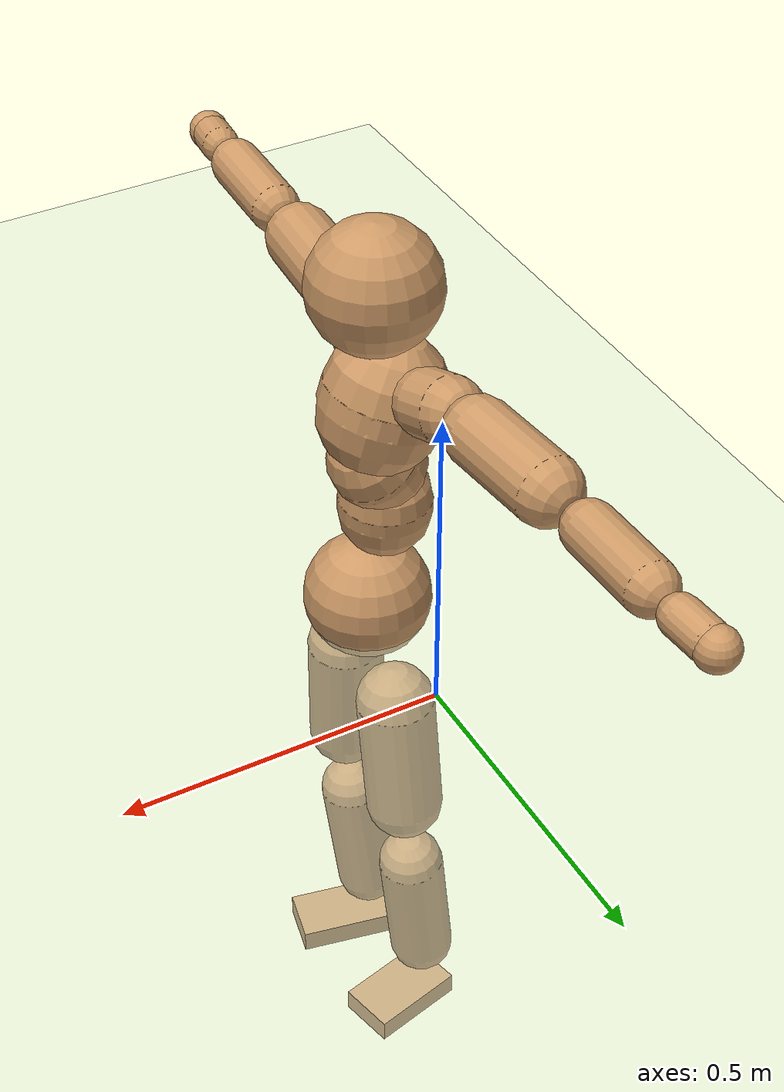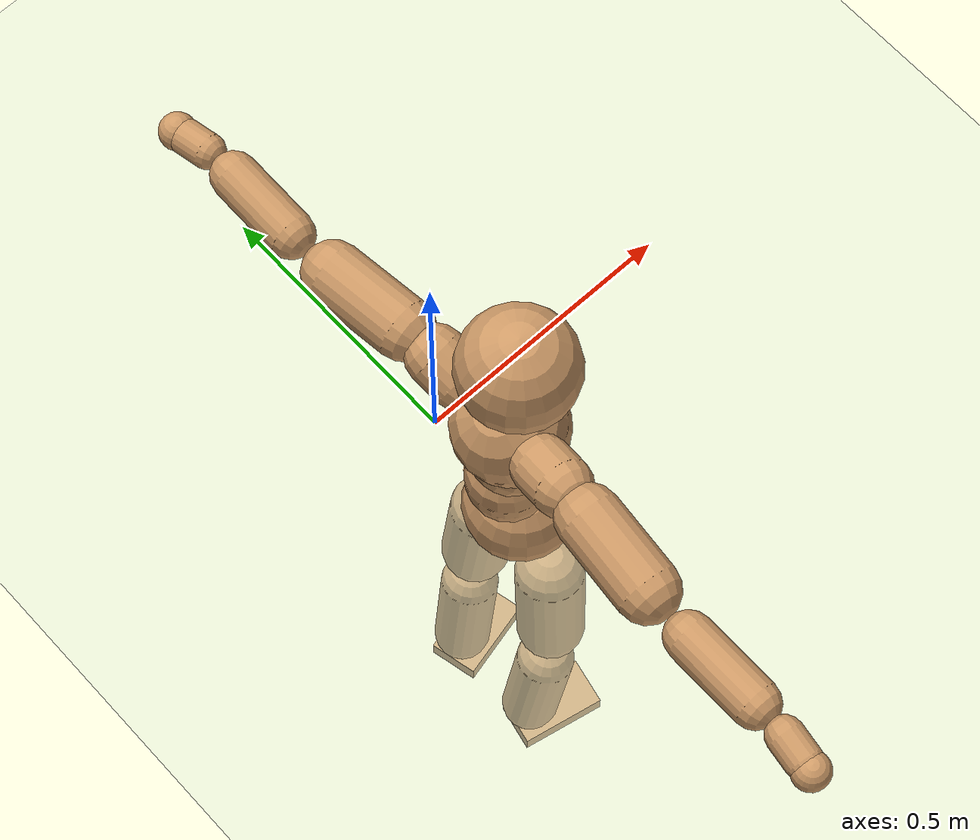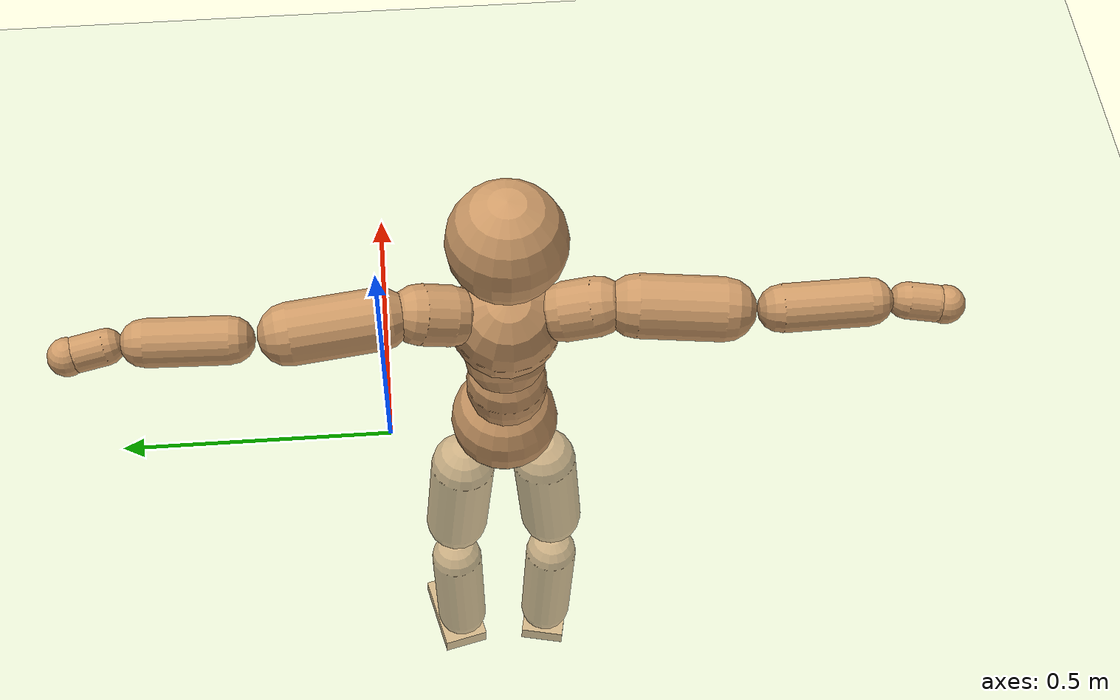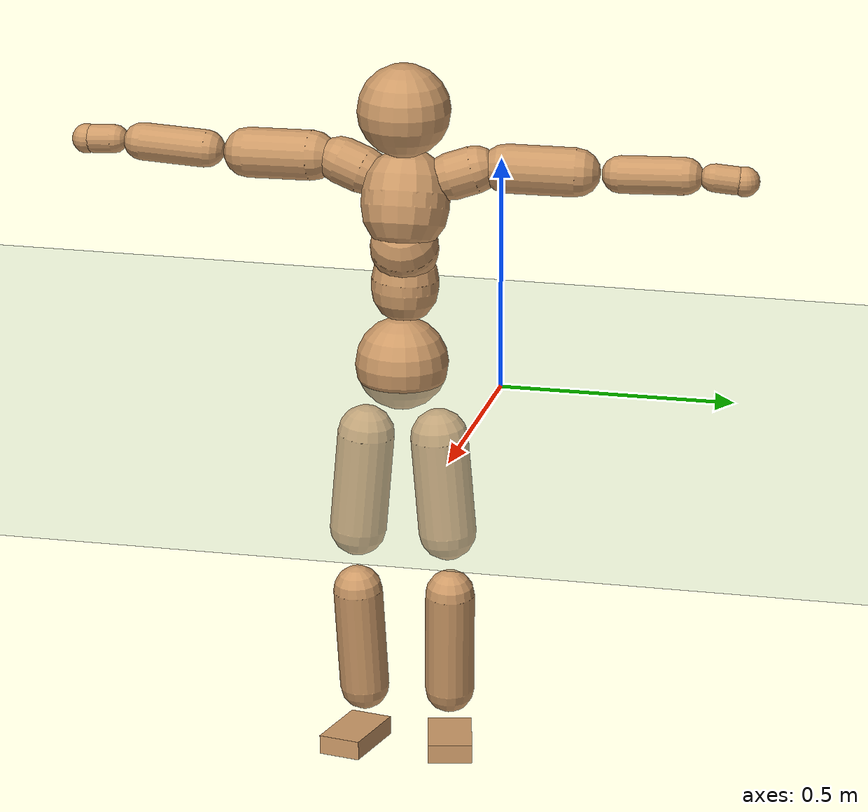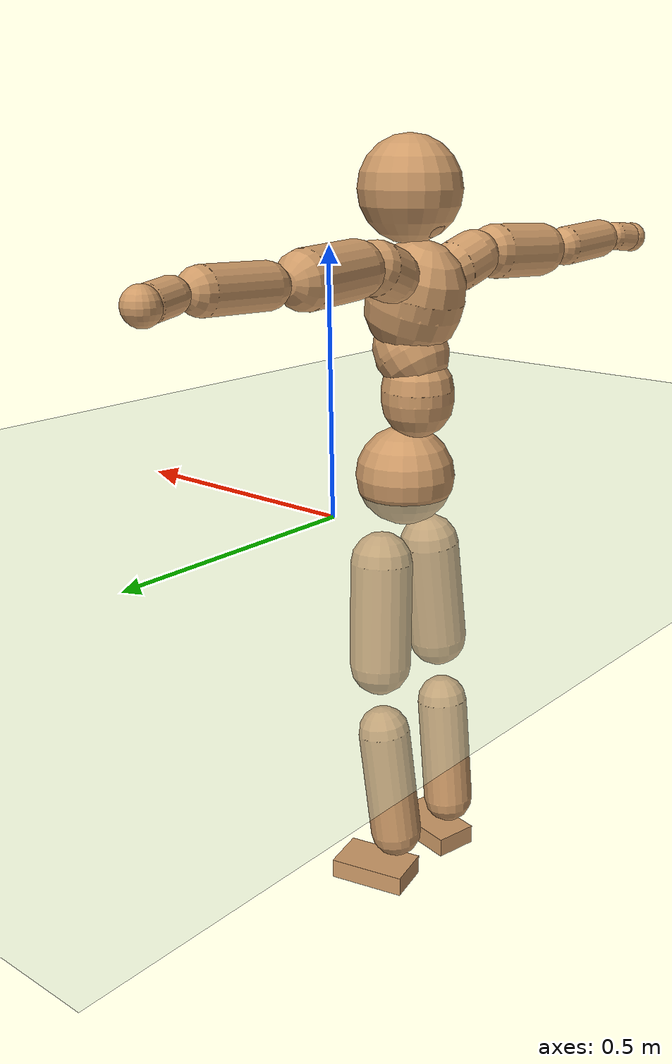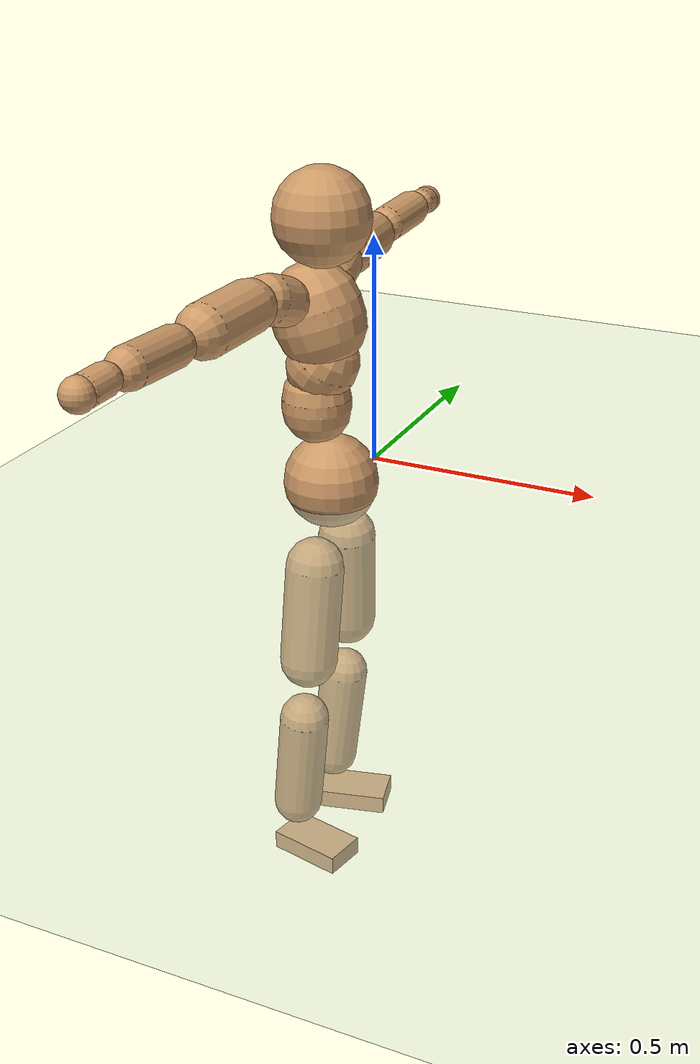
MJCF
<mujoco model="humanoid">
  <compiler coordinate="local"/>
  <default>
    <joint damping="0.0" armature="0.01" stiffness="0.0" limited="true"/>
    <geom conaffinity="1" condim="3" contype="7" margin="0.001" rgba="0.8 0.6 .4 1"/>
  </default>
  <asset>
    <texture type="skybox" builtin="gradient" rgb1=".4 .5 .6" rgb2="0 0 0" width="100" height="100"/>
    <texture builtin="flat" height="1278" mark="cross" markrgb="1 1 1" name="texgeom" random="0.01" rgb1="0.8 0.6 0.4" rgb2="0.8 0.6 0.4" type="cube" width="127"/>
    <texture builtin="checker" height="100" name="texplane" rgb1="0 0 0" rgb2="0.8 0.8 0.8" type="2d" width="100"/>
    <material name="MatPlane" reflectance="0.5" shininess="1" specular="1" texrepeat="60 60" texture="texplane"/>
    <material name="geom" texture="texgeom" texuniform="true"/>
  </asset>
  <worldbody>
    <light cutoff="100" diffuse="1 1 1" dir="-0 0 -1.3" directional="true" exponent="1" pos="0 0 1.3" specular=".1 .1 .1"/>
    <geom conaffinity="1" condim="3" name="floor" pos="0 0 0" rgba="0.8 0.9 0.8 1" size="100 100 .2" type="plane" material="MatPlane"/>
    <body name="Pelvis" pos="-0.0008 -0.2141 0.0362">
      <freejoint name="Pelvis"/>
      <geom type="sphere" contype="1" conaffinity="1" density="500" size="0.0994" pos="0.0000 0.0000 0.0000" name="Pelvis"/>
      <body name="L_Hip" pos="-0.0017 0.0747 -0.0917">
        <joint name="L_Hip_x" type="hinge" pos="0 0 0" axis="1 0 0" stiffness="800" damping="80" armature="0.02" range="-180.0000 180.0000"/>
        <joint name="L_Hip_y" type="hinge" pos="0 0 0" axis="0 1 0" stiffness="800" damping="80" armature="0.02" range="-180.0000 180.0000"/>
        <joint name="L_Hip_z" type="hinge" pos="0 0 0" axis="0 0 1" stiffness="800" damping="80" armature="0.02" range="-180.0000 180.0000"/>
        <geom type="capsule" contype="1" conaffinity="1" density="500" fromto="-0.0029 0.0054 -0.0713 -0.0118 0.0214 -0.2853" size="0.0619" name="L_Hip"/>
        <body name="L_Knee" pos="-0.0147 0.0268 -0.3566">
          <joint name="L_Knee_x" type="hinge" pos="0 0 0" axis="1 0 0" stiffness="800" damping="80" armature="0.02" range="-180.0000 180.0000"/>
          <joint name="L_Knee_y" type="hinge" pos="0 0 0" axis="0 1 0" stiffness="800" damping="80" armature="0.02" range="-180.0000 180.0000"/>
          <joint name="L_Knee_z" type="hinge" pos="0 0 0" axis="0 0 1" stiffness="800" damping="80" armature="0.02" range="-180.0000 180.0000"/>
          <geom type="capsule" contype="1" conaffinity="1" density="500" fromto="-0.0089 -0.0022 -0.0760 -0.0357 -0.0088 -0.3039" size="0.0528" name="L_Knee"/>
          <body name="L_Ankle" pos="-0.0447 -0.011 -0.3799">
            <joint name="L_Ankle_x" type="hinge" pos="0 0 0" axis="1 0 0" stiffness="800" damping="80" armature="0.02" range="-180.0000 180.0000"/>
            <joint name="L_Ankle_y" type="hinge" pos="0 0 0" axis="0 1 0" stiffness="800" damping="80" armature="0.02" range="-180.0000 180.0000"/>
            <joint name="L_Ankle_z" type="hinge" pos="0 0 0" axis="0 0 1" stiffness="800" damping="80" armature="0.02" range="-180.0000 180.0000"/>
            <geom type="box" contype="1" conaffinity="1" density="500" pos="0.0559 0.0132 -0.0275" size="0.0798 0.0473 0.0204" quat="0.9933 0.0000 0.0000 0.1154" name="L_Ankle"/>
            <body name="L_Toe" pos="0.1118 0.0263 -0.055">
              <joint name="L_Toe_x" type="hinge" pos="0 0 0" axis="1 0 0" stiffness="500" damping="50" armature="0.02" range="-180.0000 180.0000"/>
              <joint name="L_Toe_y" type="hinge" pos="0 0 0" axis="0 1 0" stiffness="500" damping="50" armature="0.02" range="-180.0000 180.0000"/>
              <joint name="L_Toe_z" type="hinge" pos="0 0 0" axis="0 0 1" stiffness="500" damping="50" armature="0.02" range="-180.0000 180.0000"/>
              <geom type="box" contype="1" conaffinity="1" density="500" pos="0.0000 0.0000 0.0270" size="0.001 0.0023 0.001" quat="0.9926 0.0000 0.0000 0.1217" name="L_Toe"/>
            </body>
          </body>
        </body>
      </body>
      <body name="R_Hip" pos="0.0016 -0.0725 -0.0924">
        <joint name="R_Hip_x" type="hinge" pos="0 0 0" axis="1 0 0" stiffness="800" damping="80" armature="0.02" range="-180.0000 180.0000"/>
        <joint name="R_Hip_y" type="hinge" pos="0 0 0" axis="0 1 0" stiffness="800" damping="80" armature="0.02" range="-180.0000 180.0000"/>
        <joint name="R_Hip_z" type="hinge" pos="0 0 0" axis="0 0 1" stiffness="800" damping="80" armature="0.02" range="-180.0000 180.0000"/>
        <geom type="capsule" contype="1" conaffinity="1" density="500" fromto="-0.0032 -0.0067 -0.0724 -0.0127 -0.0266 -0.2894" size="0.0612" name="R_Hip"/>
        <body name="R_Knee" pos="-0.0159 -0.0333 -0.3618">
          <joint name="R_Knee_x" type="hinge" pos="0 0 0" axis="1 0 0" stiffness="800" damping="80" armature="0.02" range="-180.0000 180.0000"/>
          <joint name="R_Knee_y" type="hinge" pos="0 0 0" axis="0 1 0" stiffness="800" damping="80" armature="0.02" range="-180.0000 180.0000"/>
          <joint name="R_Knee_z" type="hinge" pos="0 0 0" axis="0 0 1" stiffness="800" damping="80" armature="0.02" range="-180.0000 180.0000"/>
          <geom type="capsule" contype="1" conaffinity="1" density="500" fromto="-0.0087 0.0026 -0.0764 -0.0347 0.0105 -0.3055" size="0.053" name="R_Knee"/>
          <body name="R_Ankle" pos="-0.0433 0.0131 -0.3818">
            <joint name="R_Ankle_x" type="hinge" pos="0 0 0" axis="1 0 0" stiffness="800" damping="80" armature="0.02" range="-180.0000 180.0000"/>
            <joint name="R_Ankle_y" type="hinge" pos="0 0 0" axis="0 1 0" stiffness="800" damping="80" armature="0.02" range="-180.0000 180.0000"/>
            <joint name="R_Ankle_z" type="hinge" pos="0 0 0" axis="0 0 1" stiffness="800" damping="80" armature="0.02" range="-180.0000 180.0000"/>
            <geom type="box" contype="1" conaffinity="1" density="500" pos="0.0579 -0.0122 -0.0235" size="0.0817 0.046 0.0205" quat="0.9946 0.0000 0.0000 -0.1040" name="R_Ankle"/>
            <body name="R_Toe" pos="0.1158 -0.0245 -0.0471">
              <joint name="R_Toe_x" type="hinge" pos="0 0 0" axis="1 0 0" stiffness="500" damping="50" armature="0.02" range="-180.0000 180.0000"/>
              <joint name="R_Toe_y" type="hinge" pos="0 0 0" axis="0 1 0" stiffness="500" damping="50" armature="0.02" range="-180.0000 180.0000"/>
              <joint name="R_Toe_z" type="hinge" pos="0 0 0" axis="0 0 1" stiffness="500" damping="50" armature="0.02" range="-180.0000 180.0000"/>
              <geom type="box" contype="1" conaffinity="1" density="500" pos="0.0000 0.0000 0.0247" size="0.001 0.0023 0.0011" quat="0.9956 0.0000 0.0000 -0.0942" name="R_Toe"/>
            </body>
          </body>
        </body>
      </body>
      <body name="Torso" pos="-0.0288 -0.0017 0.1063">
        <joint name="Torso_x" type="hinge" pos="0 0 0" axis="1 0 0" stiffness="1000" damping="100" armature="0.02" range="-180.0000 180.0000"/>
        <joint name="Torso_y" type="hinge" pos="0 0 0" axis="0 1 0" stiffness="1000" damping="100" armature="0.02" range="-180.0000 180.0000"/>
        <joint name="Torso_z" type="hinge" pos="0 0 0" axis="0 0 1" stiffness="1000" damping="100" armature="0.02" range="-180.0000 180.0000"/>
        <geom type="capsule" contype="1" conaffinity="1" density="500" fromto="-0.0015 0.0018 0.0719 -0.0010 0.0012 0.0479" size="0.07161" name="Torso"/>
        <body name="Spine" pos="-0.0025 0.0029 0.1198">
          <joint name="Spine_x" type="hinge" pos="0 0 0" axis="1 0 0" stiffness="1000" damping="100" armature="0.02" range="-180.0000 180.0000"/>
          <joint name="Spine_y" type="hinge" pos="0 0 0" axis="0 1 0" stiffness="1000" damping="100" armature="0.02" range="-180.0000 180.0000"/>
          <joint name="Spine_z" type="hinge" pos="0 0 0" axis="0 0 1" stiffness="1000" damping="100" armature="0.02" range="-180.0000 180.0000"/>
          <geom type="capsule" contype="1" conaffinity="1" density="500" fromto="0.0190 0.0011 0.0296 0.0126 0.0007 0.0198" size="0.072912" name="Spine"/>
          <body name="Chest" pos="0.0316 0.0018 0.0494">
            <joint name="Chest_x" type="hinge" pos="0 0 0" axis="1 0 0" stiffness="1000" damping="100" armature="0.02" range="-180.0000 180.0000"/>
            <joint name="Chest_y" type="hinge" pos="0 0 0" axis="0 1 0" stiffness="1000" damping="100" armature="0.02" range="-180.0000 180.0000"/>
            <joint name="Chest_z" type="hinge" pos="0 0 0" axis="0 0 1" stiffness="1000" damping="100" armature="0.02" range="-180.0000 180.0000"/>
            <geom type="capsule" contype="1" conaffinity="1" density="500" fromto="-0.0301 -0.0009 0.0922 -0.0201 -0.0006 0.0615" size="0.094581" name="Chest"/>
            <body name="Neck" pos="-0.0607 -0.0025 0.2157">
              <joint name="Neck_x" type="hinge" pos="0 0 0" axis="1 0 0" stiffness="500" damping="50" armature="0.02" range="-180.0000 180.0000"/>
              <joint name="Neck_y" type="hinge" pos="0 0 0" axis="0 1 0" stiffness="500" damping="50" armature="0.02" range="-180.0000 180.0000"/>
              <joint name="Neck_z" type="hinge" pos="0 0 0" axis="0 0 1" stiffness="500" damping="50" armature="0.02" range="-180.0000 180.0000"/>
              <geom type="capsule" contype="1" conaffinity="1" density="500" fromto="0.0097 0.0003 0.0120 0.0389 0.0013 0.0480" size="0.039153" name="Neck"/>
              <body name="Head" pos="0.0486 0.0016 0.06">
                <joint name="Head_x" type="hinge" pos="0 0 0" axis="1 0 0" stiffness="500" damping="50" armature="0.02" range="-180.0000 180.0000"/>
                <joint name="Head_y" type="hinge" pos="0 0 0" axis="0 1 0" stiffness="500" damping="50" armature="0.02" range="-180.0000 180.0000"/>
                <joint name="Head_z" type="hinge" pos="0 0 0" axis="0 0 1" stiffness="500" damping="50" armature="0.02" range="-180.0000 180.0000"/>
                <geom type="sphere" contype="1" conaffinity="1" density="500" size="0.0994" pos="0.0000 0.0000 0.0000" name="Head"/>
              </body>
            </body>
            <body name="L_Thorax" pos="-0.0429 0.0764 0.123">
              <joint name="L_Thorax_x" type="hinge" pos="0 0 0" axis="1 0 0" stiffness="500" damping="50" armature="0.02" range="-180.0000 180.0000"/>
              <joint name="L_Thorax_y" type="hinge" pos="0 0 0" axis="0 1 0" stiffness="500" damping="50" armature="0.02" range="-180.0000 180.0000"/>
              <joint name="L_Thorax_z" type="hinge" pos="0 0 0" axis="0 0 1" stiffness="500" damping="50" armature="0.02" range="-180.0000 180.0000"/>
              <geom type="capsule" contype="1" conaffinity="1" density="500" fromto="-0.0019 0.0166 0.0056 -0.0077 0.0665 0.0225" size="0.0511" name="L_Thorax"/>
              <body name="L_Shoulder" pos="-0.0096 0.0832 0.0281">
                <joint name="L_Shoulder_x" type="hinge" pos="0 0 0" axis="1 0 0" stiffness="500" damping="50" armature="0.02" range="-720.0000 720.0000"/>
                <joint name="L_Shoulder_y" type="hinge" pos="0 0 0" axis="0 1 0" stiffness="500" damping="50" armature="0.02" range="-720.0000 720.0000"/>
                <joint name="L_Shoulder_z" type="hinge" pos="0 0 0" axis="0 0 1" stiffness="500" damping="50" armature="0.02" range="-720.0000 720.0000"/>
                <geom type="capsule" contype="1" conaffinity="1" density="500" fromto="-0.0054 0.0486 -0.0012 -0.0217 0.1943 -0.0049" size="0.0524" name="L_Shoulder"/>
                <body name="L_Elbow" pos="-0.0271 0.2428 -0.0061">
                  <joint name="L_Elbow_x" type="hinge" pos="0 0 0" axis="1 0 0" stiffness="500" damping="50" armature="0.02" range="-720.0000 720.0000"/>
                  <joint name="L_Elbow_y" type="hinge" pos="0 0 0" axis="0 1 0" stiffness="500" damping="50" armature="0.02" range="-720.0000 720.0000"/>
                  <joint name="L_Elbow_z" type="hinge" pos="0 0 0" axis="0 0 1" stiffness="500" damping="50" armature="0.02" range="-720.0000 720.0000"/>
                  <geom type="capsule" contype="1" conaffinity="1" density="500" fromto="0.0000 0.0455 0.0017 0.0001 0.1822 0.0069" size="0.0399" name="L_Elbow"/>
                  <body name="L_Wrist" pos="0.0001 0.2277 0.0086">
                    <joint name="L_Wrist_x" type="hinge" pos="0 0 0" axis="1 0 0" stiffness="300" damping="30" armature="0.02" range="-180.0000 180.0000"/>
                    <joint name="L_Wrist_y" type="hinge" pos="0 0 0" axis="0 1 0" stiffness="300" damping="30" armature="0.02" range="-180.0000 180.0000"/>
                    <joint name="L_Wrist_z" type="hinge" pos="0 0 0" axis="0 0 1" stiffness="300" damping="30" armature="0.02" range="-180.0000 180.0000"/>
                    <geom type="capsule" contype="1" conaffinity="1" density="500" fromto="-0.0026 0.0157 -0.0019 -0.0103 0.0629 -0.0074" size="0.0301" name="L_Wrist"/>
                    <body name="L_Hand" pos="-0.0129 0.0786 -0.0093">
                      <joint name="L_Hand_x" type="hinge" pos="0 0 0" axis="1 0 0" stiffness="300" damping="30" armature="0.02" range="-180.0000 180.0000"/>
                      <joint name="L_Hand_y" type="hinge" pos="0 0 0" axis="0 1 0" stiffness="300" damping="30" armature="0.02" range="-180.0000 180.0000"/>
                      <joint name="L_Hand_z" type="hinge" pos="0 0 0" axis="0 0 1" stiffness="300" damping="30" armature="0.02" range="-180.0000 180.0000"/>
                      <geom type="sphere" contype="1" conaffinity="1" density="500" size="0.0318" pos="0.0000 0.0000 0.0000" name="L_Hand"/>
                    </body>
                  </body>
                </body>
              </body>
            </body>
            <body name="R_Thorax" pos="-0.0469 -0.0784 0.1221">
              <joint name="R_Thorax_x" type="hinge" pos="0 0 0" axis="1 0 0" stiffness="500" damping="50" armature="0.02" range="-180.0000 180.0000"/>
              <joint name="R_Thorax_y" type="hinge" pos="0 0 0" axis="0 1 0" stiffness="500" damping="50" armature="0.02" range="-180.0000 180.0000"/>
              <joint name="R_Thorax_z" type="hinge" pos="0 0 0" axis="0 0 1" stiffness="500" damping="50" armature="0.02" range="-180.0000 180.0000"/>
              <geom type="capsule" contype="1" conaffinity="1" density="500" fromto="-0.0019 -0.0171 0.0060 -0.0078 -0.0682 0.0239" size="0.0503" name="R_Thorax"/>
              <body name="R_Shoulder" pos="-0.0097 -0.0853 0.0299">
                <joint name="R_Shoulder_x" type="hinge" pos="0 0 0" axis="1 0 0" stiffness="500" damping="50" armature="0.02" range="-720.0000 720.0000"/>
                <joint name="R_Shoulder_y" type="hinge" pos="0 0 0" axis="0 1 0" stiffness="500" damping="50" armature="0.02" range="-720.0000 720.0000"/>
                <joint name="R_Shoulder_z" type="hinge" pos="0 0 0" axis="0 0 1" stiffness="500" damping="50" armature="0.02" range="-720.0000 720.0000"/>
                <geom type="capsule" contype="1" conaffinity="1" density="500" fromto="-0.0042 -0.0471 -0.0020 -0.0168 -0.1884 -0.0080" size="0.0537" name="R_Shoulder"/>
                <body name="R_Elbow" pos="-0.021 -0.2355 -0.0099">
                  <joint name="R_Elbow_x" type="hinge" pos="0 0 0" axis="1 0 0" stiffness="500" damping="50" armature="0.02" range="-720.0000 720.0000"/>
                  <joint name="R_Elbow_y" type="hinge" pos="0 0 0" axis="0 1 0" stiffness="500" damping="50" armature="0.02" range="-720.0000 720.0000"/>
                  <joint name="R_Elbow_z" type="hinge" pos="0 0 0" axis="0 0 1" stiffness="500" damping="50" armature="0.02" range="-720.0000 720.0000"/>
                  <geom type="capsule" contype="1" conaffinity="1" density="500" fromto="-0.0005 -0.0470 0.0022 -0.0018 -0.1878 0.0088" size="0.0402" name="R_Elbow"/>
                  <body name="R_Wrist" pos="-0.0023 -0.2348 0.011">
                    <joint name="R_Wrist_x" type="hinge" pos="0 0 0" axis="1 0 0" stiffness="300" damping="30" armature="0.02" range="-180.0000 180.0000"/>
                    <joint name="R_Wrist_y" type="hinge" pos="0 0 0" axis="0 1 0" stiffness="300" damping="30" armature="0.02" range="-180.0000 180.0000"/>
                    <joint name="R_Wrist_z" type="hinge" pos="0 0 0" axis="0 0 1" stiffness="300" damping="30" armature="0.02" range="-180.0000 180.0000"/>
                    <geom type="capsule" contype="1" conaffinity="1" density="500" fromto="-0.0020 -0.0158 -0.0014 -0.0082 -0.0630 -0.0056" size="0.0307" name="R_Wrist"/>
                    <body name="R_Hand" pos="-0.0102 -0.0788 -0.007">
                      <joint name="R_Hand_x" type="hinge" pos="0 0 0" axis="1 0 0" stiffness="300" damping="30" armature="0.02" range="-180.0000 180.0000"/>
                      <joint name="R_Hand_y" type="hinge" pos="0 0 0" axis="0 1 0" stiffness="300" damping="30" armature="0.02" range="-180.0000 180.0000"/>
                      <joint name="R_Hand_z" type="hinge" pos="0 0 0" axis="0 0 1" stiffness="300" damping="30" armature="0.02" range="-180.0000 180.0000"/>
                      <geom type="sphere" contype="1" conaffinity="1" density="500" size="0.0319" pos="0.0000 0.0000 0.0000" name="R_Hand"/>
                    </body>
                  </body>
                </body>
              </body>
            </body>
          </body>
        </body>
      </body>
    </body>
  </worldbody>
  <actuator>
    <motor name="L_Hip_x" joint="L_Hip_x" gear="500"/>
    <motor name="L_Hip_y" joint="L_Hip_y" gear="500"/>
    <motor name="L_Hip_z" joint="L_Hip_z" gear="500"/>
    <motor name="L_Knee_x" joint="L_Knee_x" gear="500"/>
    <motor name="L_Knee_y" joint="L_Knee_y" gear="500"/>
    <motor name="L_Knee_z" joint="L_Knee_z" gear="500"/>
    <motor name="L_Ankle_x" joint="L_Ankle_x" gear="500"/>
    <motor name="L_Ankle_y" joint="L_Ankle_y" gear="500"/>
    <motor name="L_Ankle_z" joint="L_Ankle_z" gear="500"/>
    <motor name="L_Toe_x" joint="L_Toe_x" gear="500"/>
    <motor name="L_Toe_y" joint="L_Toe_y" gear="500"/>
    <motor name="L_Toe_z" joint="L_Toe_z" gear="500"/>
    <motor name="R_Hip_x" joint="R_Hip_x" gear="500"/>
    <motor name="R_Hip_y" joint="R_Hip_y" gear="500"/>
    <motor name="R_Hip_z" joint="R_Hip_z" gear="500"/>
    <motor name="R_Knee_x" joint="R_Knee_x" gear="500"/>
    <motor name="R_Knee_y" joint="R_Knee_y" gear="500"/>
    <motor name="R_Knee_z" joint="R_Knee_z" gear="500"/>
    <motor name="R_Ankle_x" joint="R_Ankle_x" gear="500"/>
    <motor name="R_Ankle_y" joint="R_Ankle_y" gear="500"/>
    <motor name="R_Ankle_z" joint="R_Ankle_z" gear="500"/>
    <motor name="R_Toe_x" joint="R_Toe_x" gear="500"/>
    <motor name="R_Toe_y" joint="R_Toe_y" gear="500"/>
    <motor name="R_Toe_z" joint="R_Toe_z" gear="500"/>
    <motor name="Torso_x" joint="Torso_x" gear="500"/>
    <motor name="Torso_y" joint="Torso_y" gear="500"/>
    <motor name="Torso_z" joint="Torso_z" gear="500"/>
    <motor name="Spine_x" joint="Spine_x" gear="500"/>
    <motor name="Spine_y" joint="Spine_y" gear="500"/>
    <motor name="Spine_z" joint="Spine_z" gear="500"/>
    <motor name="Chest_x" joint="Chest_x" gear="500"/>
    <motor name="Chest_y" joint="Chest_y" gear="500"/>
    <motor name="Chest_z" joint="Chest_z" gear="500"/>
    <motor name="Neck_x" joint="Neck_x" gear="500"/>
    <motor name="Neck_y" joint="Neck_y" gear="500"/>
    <motor name="Neck_z" joint="Neck_z" gear="500"/>
    <motor name="Head_x" joint="Head_x" gear="500"/>
    <motor name="Head_y" joint="Head_y" gear="500"/>
    <motor name="Head_z" joint="Head_z" gear="500"/>
    <motor name="L_Thorax_x" joint="L_Thorax_x" gear="500"/>
    <motor name="L_Thorax_y" joint="L_Thorax_y" gear="500"/>
    <motor name="L_Thorax_z" joint="L_Thorax_z" gear="500"/>
    <motor name="L_Shoulder_x" joint="L_Shoulder_x" gear="500"/>
    <motor name="L_Shoulder_y" joint="L_Shoulder_y" gear="500"/>
    <motor name="L_Shoulder_z" joint="L_Shoulder_z" gear="500"/>
    <motor name="L_Elbow_x" joint="L_Elbow_x" gear="500"/>
    <motor name="L_Elbow_y" joint="L_Elbow_y" gear="500"/>
    <motor name="L_Elbow_z" joint="L_Elbow_z" gear="500"/>
    <motor name="L_Wrist_x" joint="L_Wrist_x" gear="500"/>
    <motor name="L_Wrist_y" joint="L_Wrist_y" gear="500"/>
    <motor name="L_Wrist_z" joint="L_Wrist_z" gear="500"/>
    <motor name="L_Hand_x" joint="L_Hand_x" gear="500"/>
    <motor name="L_Hand_y" joint="L_Hand_y" gear="500"/>
    <motor name="L_Hand_z" joint="L_Hand_z" gear="500"/>
    <motor name="R_Thorax_x" joint="R_Thorax_x" gear="500"/>
    <motor name="R_Thorax_y" joint="R_Thorax_y" gear="500"/>
    <motor name="R_Thorax_z" joint="R_Thorax_z" gear="500"/>
    <motor name="R_Shoulder_x" joint="R_Shoulder_x" gear="500"/>
    <motor name="R_Shoulder_y" joint="R_Shoulder_y" gear="500"/>
    <motor name="R_Shoulder_z" joint="R_Shoulder_z" gear="500"/>
    <motor name="R_Elbow_x" joint="R_Elbow_x" gear="500"/>
    <motor name="R_Elbow_y" joint="R_Elbow_y" gear="500"/>
    <motor name="R_Elbow_z" joint="R_Elbow_z" gear="500"/>
    <motor name="R_Wrist_x" joint="R_Wrist_x" gear="500"/>
    <motor name="R_Wrist_y" joint="R_Wrist_y" gear="500"/>
    <motor name="R_Wrist_z" joint="R_Wrist_z" gear="500"/>
    <motor name="R_Hand_x" joint="R_Hand_x" gear="500"/>
    <motor name="R_Hand_y" joint="R_Hand_y" gear="500"/>
    <motor name="R_Hand_z" joint="R_Hand_z" gear="500"/>
  </actuator>
  <contact>
    <exclude body1="Torso" body2="Chest"/>
    <exclude body1="Head" body2="Chest"/>
    <exclude body1="R_Knee" body2="R_Toe"/>
    <exclude body1="R_Knee" body2="L_Ankle"/>
    <exclude body1="R_Knee" body2="L_Toe"/>
    <exclude body1="L_Knee" body2="L_Toe"/>
    <exclude body1="L_Knee" body2="R_Ankle"/>
    <exclude body1="L_Knee" body2="R_Toe"/>
    <exclude body1="L_Shoulder" body2="Chest"/>
    <exclude body1="R_Shoulder" body2="Chest"/>
  </contact>
  <sensor/>
  <size njmax="700" nconmax="700"/>
</mujoco>
